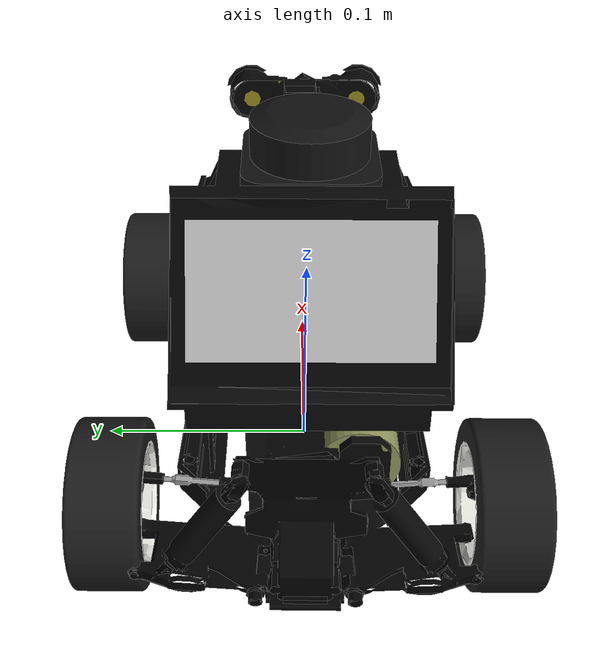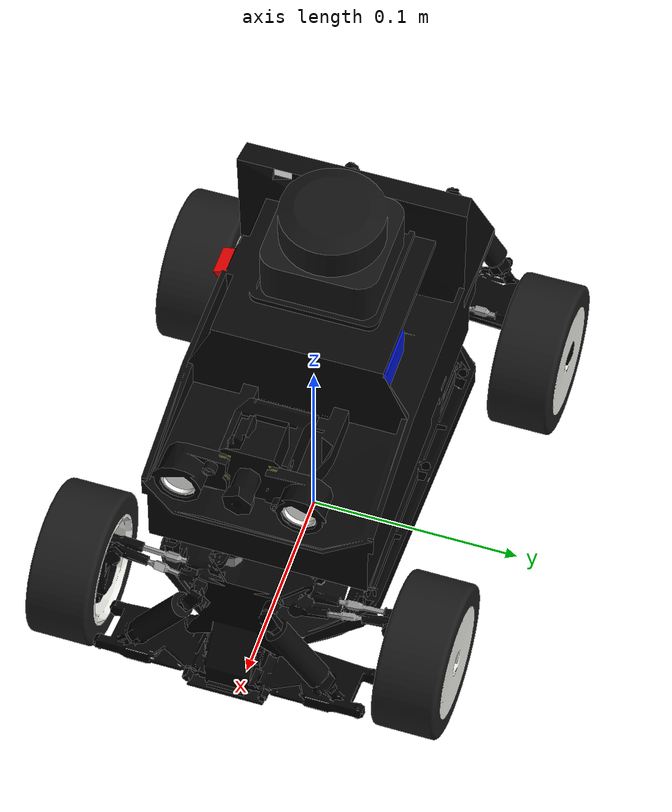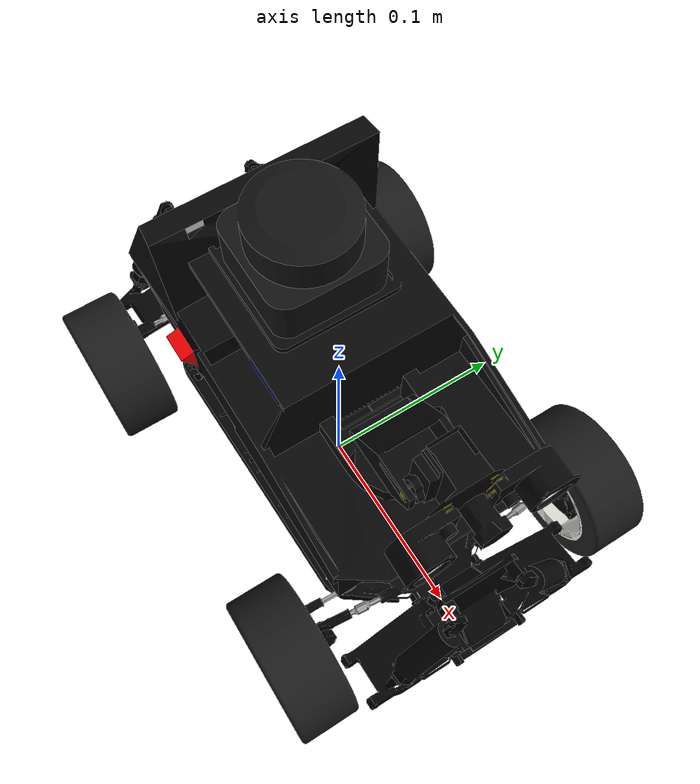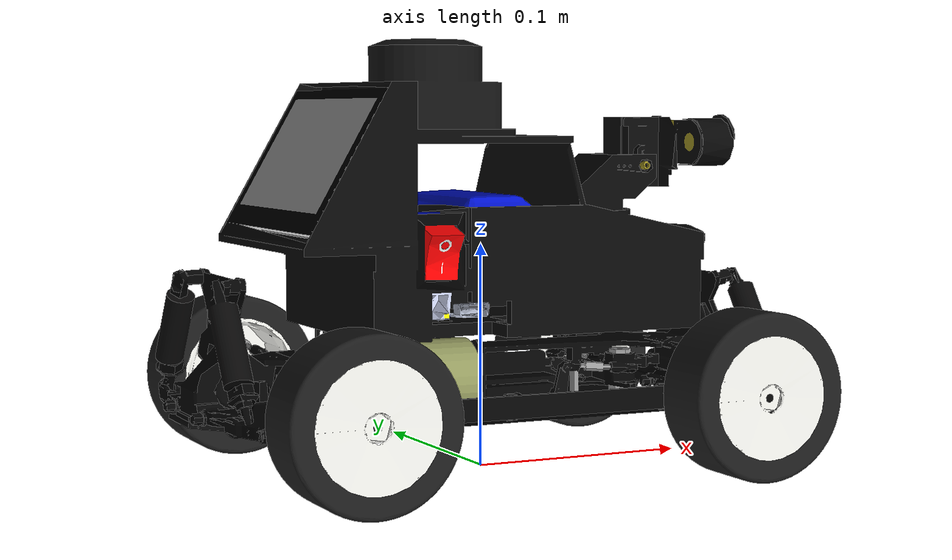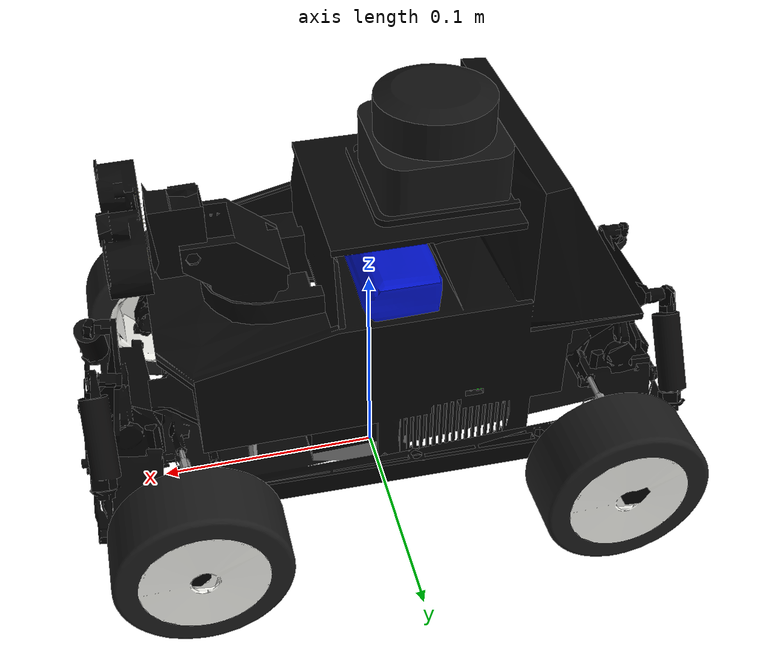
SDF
<sdf version='1.11'>
  <model name='physicar'>
    <link name='base_footprint'>
      <inertial>
        <pose>-0.00087096774193548391 0 0.024741935483870958 0 0 0</pose>
        <mass>3.1000000000000001</mass>
        <inertia>
          <ixx>0.0080554435483870968</ixx>
          <ixy>0</ixy>
          <ixz>0.00042459677419354842</ixz>
          <iyy>0.027925991935483872</iyy>
          <iyz>0</iyz>
          <izz>0.025370548387096771</izz>
        </inertia>
      </inertial>
      <collision name='base_footprint_fixed_joint_lump__base_collision_collision'>
        <pose>0 0 0.079500000000000002 0 0 0</pose>
        <geometry>
          <box>
            <size>0.27000000000000002 0.089999999999999997 0.12</size>
          </box>
        </geometry>
      </collision>
      <collision name='base_footprint_fixed_joint_lump__lidar_collision_collision_1'>
        <pose>-0.027 0 0.18200000000000001 0 0 0</pose>
        <geometry>
          <cylinder>
            <length>0.040000000000000001</length>
            <radius>0.035000000000000003</radius>
          </cylinder>
        </geometry>
      </collision>
      <visual name='base_footprint_fixed_joint_lump__base_visual_visual'>
        <pose>0 0 0.041499999999999998 0 0 0</pose>
        <geometry>
          <mesh>
            <scale>1 1 1</scale>
            <uri>model://meshes/physicar/Base.dae</uri>
          </mesh>
        </geometry>
      </visual>
      <visual name='base_footprint_fixed_joint_lump__top_visual_visual_1'>
        <pose>0 0 0.019499999999999998 0 0 0</pose>
        <geometry>
          <mesh>
            <scale>1 1 1</scale>
            <uri>model://meshes/physicar/Body.dae</uri>
          </mesh>
        </geometry>
      </visual>
      <visual name='base_footprint_fixed_joint_lump__lidar_visual_visual_2'>
        <pose>0 0 0.019499999999999998 0 0 0</pose>
        <geometry>
          <mesh>
            <scale>1 1 1</scale>
            <uri>model://meshes/physicar/RPLidarC1.dae</uri>
          </mesh>
        </geometry>
      </visual>
      <sensor name='imu_sensor' type='imu'>
        <always_on>true</always_on>
        <update_rate>50</update_rate>
        <visualize>false</visualize>
        <topic>imu</topic>
        <imu>
          <angular_velocity>
            <x>
              <noise type='gaussian'>
                <mean>0</mean>
                <stddev>0.00020000000000000001</stddev>
              </noise>
            </x>
            <y>
              <noise type='gaussian'>
                <mean>0</mean>
                <stddev>0.00020000000000000001</stddev>
              </noise>
            </y>
            <z>
              <noise type='gaussian'>
                <mean>0</mean>
                <stddev>0.00020000000000000001</stddev>
              </noise>
            </z>
          </angular_velocity>
          <linear_acceleration>
            <x>
              <noise type='gaussian'>
                <mean>0</mean>
                <stddev>0.017000000000000001</stddev>
              </noise>
            </x>
            <y>
              <noise type='gaussian'>
                <mean>0</mean>
                <stddev>0.017000000000000001</stddev>
              </noise>
            </y>
            <z>
              <noise type='gaussian'>
                <mean>0</mean>
                <stddev>0.017000000000000001</stddev>
              </noise>
            </z>
          </linear_acceleration>
        </imu>
        <pose>0 0 0.0275 0 0 0</pose>
        <gz_frame_id>imu_link</gz_frame_id>
      </sensor>
      <sensor name='mag_sensor' type='magnetometer'>
        <always_on>true</always_on>
        <update_rate>50</update_rate>
        <visualize>false</visualize>
        <topic>mag</topic>
        <magnetometer>
          <x>
            <noise type='gaussian'>
              <mean>0</mean>
              <stddev>0.1</stddev>
            </noise>
          </x>
          <y>
            <noise type='gaussian'>
              <mean>0</mean>
              <stddev>0.1</stddev>
            </noise>
          </y>
          <z>
            <noise type='gaussian'>
              <mean>0</mean>
              <stddev>0.1</stddev>
            </noise>
          </z>
        </magnetometer>
        <pose>0 0 0.0275 0 0 0</pose>
        <gz_frame_id>imu_link</gz_frame_id>
      </sensor>
      <sensor name='lidar_sensor' type='gpu_lidar'>
        <always_on>true</always_on>
        <update_rate>10</update_rate>
        <visualize>false</visualize>
        <topic>scan</topic>
        <lidar>
          <scan>
            <horizontal>
              <samples>720</samples>
              <resolution>1</resolution>
              <min_angle>-3.1415899999999999</min_angle>
              <max_angle>3.1415899999999999</max_angle>
            </horizontal>
          </scan>
          <range>
            <min>0.10000000000000001</min>
            <max>16</max>
            <resolution>0.01</resolution>
          </range>
          <noise>
            <type>gaussian</type>
            <mean>0</mean>
            <stddev>0.01</stddev>
          </noise>
        </lidar>
        <pose>-0.027 0 0.18200000000000001 0 0 0</pose>
        <gz_frame_id>lidar_link</gz_frame_id>
      </sensor>
    </link>
    <joint name='camera_pan_joint' type='revolute'>
      <pose relative_to='base_footprint'>0.050000000000000003 0 0.11950000000000001 0 0 0</pose>
      <parent>base_footprint</parent>
      <child>camera_pan_link</child>
      <axis>
        <xyz>0 0 1</xyz>
        <limit>
          <lower>-0.5236</lower>
          <upper>0.5236</upper>
          <effort>100</effort>
          <velocity>10</velocity>
        </limit>
        <dynamics>
          <damping>0.1</damping>
          <friction>0.01</friction>
          <spring_reference>0</spring_reference>
          <spring_stiffness>0</spring_stiffness>
        </dynamics>
      </axis>
    </joint>
    <link name='camera_pan_link'>
      <pose relative_to='camera_pan_joint'>0 0 0 0 0 0</pose>
      <inertial>
        <pose>0 0 0 0 0 0</pose>
        <mass>0.02</mass>
        <inertia>
          <ixx>1.0e-04</ixx>
          <ixy>0</ixy>
          <ixz>0</ixz>
          <iyy>1.0e-04</iyy>
          <iyz>0</iyz>
          <izz>1.0e-04</izz>
        </inertia>
      </inertial>

      <visual name='camera_pan_link_fixed_joint_lump__pan_visual_visual'>
        <pose>-0.050000000000000003 0 -0.10000000000000001 0 0 0</pose>
        <geometry>
          <mesh>
            <scale>1 1 1</scale>
            <uri>model://meshes/physicar/ServoPan.dae</uri>
          </mesh>
        </geometry>
      </visual>
    </link>
    <joint name='camera_tilt_joint' type='revolute'>
      <pose relative_to='camera_pan_link'>0.025000000000000001 0 0.012999999999999999 0 0 0</pose>
      <parent>camera_pan_link</parent>
      <child>camera_tilt_link</child>
      <axis>
        <xyz>0 -1 0</xyz>
        <limit>
          <lower>-0.5236</lower>
          <upper>0.5236</upper>
          <effort>100</effort>
          <velocity>10</velocity>
        </limit>
        <dynamics>
          <damping>0.1</damping>
          <friction>0.01</friction>
          <spring_reference>0</spring_reference>
          <spring_stiffness>0</spring_stiffness>
        </dynamics>
      </axis>
    </joint>
    <link name='camera_tilt_link'>
      <pose relative_to='camera_tilt_joint'>0 0 0 0 0 0</pose>
      <inertial>
        <pose>0.0094999999999999998 0 0.0035000000000000009 0 0 0</pose>
        <mass>0.02</mass>
        <inertia>
          <ixx>1.0e-04</ixx>
          <ixy>0</ixy>
          <ixz>0</ixz>
          <iyy>1.0e-04</iyy>
          <iyz>0</iyz>
          <izz>1.0e-04</izz>
        </inertia>
      </inertial>

      <visual name='camera_tilt_link_fixed_joint_lump__tilt_visual_visual'>
        <pose>-0.074999999999999997 0 -0.113 0 0 0</pose>
        <geometry>
          <mesh>
            <scale>1 1 1</scale>
            <uri>model://meshes/physicar/ServoTilt.dae</uri>
          </mesh>
        </geometry>
      </visual>
      <sensor name='camera_sensor' type='camera'>
        <always_on>true</always_on>
        <update_rate>15</update_rate>
        <visualize>false</visualize>
        <topic>camera/image_raw</topic>
        <camera>
          <horizontal_fov>1.7453</horizontal_fov>
          <image>
            <width>480</width>
            <height>360</height>
            <format>R8G8B8</format>
          </image>
          <clip>
            <near>0.01</near>
            <far>50</far>
          </clip>
          <distortion>
            <k1>-0.045</k1>
            <k2>-0.0001</k2>
            <k3>0.001</k3>
            <p1>-0.0003</p1>
            <p2>-0.0001</p2>
            <center>0.5 0.5</center>
          </distortion>
          <noise>
            <type>gaussian</type>
            <mean>0</mean>
            <stddev>0.0070000000000000001</stddev>
          </noise>
        </camera>
        <pose>0.030 0 0.014 0 0 0</pose>
        <gz_frame_id>camera_optical_frame</gz_frame_id>
      </sensor>
    </link>
    <joint name='front_left_steering_joint' type='revolute'>
      <pose relative_to='base_footprint'>0.090000000000000000 0.080000000000000000 0.0375 0 0 0</pose>
      <parent>base_footprint</parent>
      <child>front_left_steering_link</child>
      <axis>
        <xyz>0 0 1</xyz>
        <limit>
          <lower>-0.4189</lower>
          <upper>0.4189</upper>
          <effort>25</effort>
          <velocity>10</velocity>
        </limit>
        <dynamics>
          <damping>0.0001</damping>
          <friction>0.0001</friction>
          <spring_reference>0</spring_reference>
          <spring_stiffness>0</spring_stiffness>
        </dynamics>
      </axis>
    </joint>
    <link name='front_left_steering_link'>
      <pose relative_to='front_left_steering_joint'>0 0 0 0 0 0</pose>
      <inertial>
        <pose>0 0 0 0 0 0</pose>
        <mass>0.01</mass>
        <inertia>
          <ixx>9.9999999999999995e-07</ixx>
          <ixy>0</ixy>
          <ixz>0</ixz>
          <iyy>9.9999999999999995e-07</iyy>
          <iyz>0</iyz>
          <izz>9.9999999999999995e-07</izz>
        </inertia>
      </inertial>
    </link>
    <joint name='front_left_wheel_joint' type='revolute'>
      <pose relative_to='front_left_steering_link'>0 0 0 0 0 0</pose>
      <parent>front_left_steering_link</parent>
      <child>front_left_wheel_link</child>
      <axis>
        <xyz>0 1 0</xyz>
        <limit>
          <lower>-inf</lower>
          <upper>inf</upper>
        </limit>
        <dynamics>
          <damping>0.5</damping>
          <friction>0.10000000000000001</friction>
          <spring_reference>0</spring_reference>
          <spring_stiffness>0</spring_stiffness>
        </dynamics>
      </axis>
    </joint>
    <link name='front_left_wheel_link'>
      <pose relative_to='front_left_wheel_joint'>0 0 0 0 0 0</pose>
      <inertial>
        <pose>0 0 0 0 0 0</pose>
        <mass>0.050000000000000003</mass>
        <inertia>
          <ixx>2.1757291666666671e-05</ixx>
          <ixy>0</ixy>
          <ixz>0</ixz>
          <iyy>3.330625e-05</iyy>
          <iyz>0</iyz>
          <izz>2.1757291666666671e-05</izz>
        </inertia>
      </inertial>
      <collision name='front_left_wheel_link_collision'>
        <pose>0 0 0 1.5707963267948959 0 0</pose>
        <geometry>
          <cylinder>
            <length>0.035000000000000003</length>
            <radius>0.0375</radius>
          </cylinder>
        </geometry>
        <surface>
          <contact>
            <ode>
              <kp>1000000</kp>
              <kd>100</kd>
              <min_depth>0.001</min_depth>
            </ode>
          </contact>
          <friction>
            <ode>
              <mu>1</mu>
              <mu2>1</mu2>
            </ode>
          </friction>
        </surface>
      </collision>
      <visual name='front_left_wheel_link_visual'>
        <pose>0 0.017500000000000002 0 0 0 3.1415926535897931</pose>
        <geometry>
          <mesh>
            <scale>1 1 1</scale>
            <uri>model://meshes/physicar/Wheel.dae</uri>
          </mesh>
        </geometry>
      </visual>
    </link>
    <joint name='front_right_steering_joint' type='revolute'>
      <pose relative_to='base_footprint'>0.090000000000000000 -0.080000000000000000 0.0375 0 0 0</pose>
      <parent>base_footprint</parent>
      <child>front_right_steering_link</child>
      <axis>
        <xyz>0 0 1</xyz>
        <limit>
          <lower>-0.4189</lower>
          <upper>0.4189</upper>
          <effort>25</effort>
          <velocity>10</velocity>
        </limit>
        <dynamics>
          <damping>0.0001</damping>
          <friction>0.0001</friction>
          <spring_reference>0</spring_reference>
          <spring_stiffness>0</spring_stiffness>
        </dynamics>
      </axis>
    </joint>
    <link name='front_right_steering_link'>
      <pose relative_to='front_right_steering_joint'>0 0 0 0 0 0</pose>
      <inertial>
        <pose>0 0 0 0 0 0</pose>
        <mass>0.01</mass>
        <inertia>
          <ixx>9.9999999999999995e-07</ixx>
          <ixy>0</ixy>
          <ixz>0</ixz>
          <iyy>9.9999999999999995e-07</iyy>
          <iyz>0</iyz>
          <izz>9.9999999999999995e-07</izz>
        </inertia>
      </inertial>
    </link>
    <joint name='front_right_wheel_joint' type='revolute'>
      <pose relative_to='front_right_steering_link'>0 0 0 0 0 0</pose>
      <parent>front_right_steering_link</parent>
      <child>front_right_wheel_link</child>
      <axis>
        <xyz>0 1 0</xyz>
        <limit>
          <lower>-inf</lower>
          <upper>inf</upper>
        </limit>
        <dynamics>
          <damping>0.5</damping>
          <friction>0.10000000000000001</friction>
          <spring_reference>0</spring_reference>
          <spring_stiffness>0</spring_stiffness>
        </dynamics>
      </axis>
    </joint>
    <link name='front_right_wheel_link'>
      <pose relative_to='front_right_wheel_joint'>0 0 0 0 0 0</pose>
      <inertial>
        <pose>0 0 0 0 0 0</pose>
        <mass>0.050000000000000003</mass>
        <inertia>
          <ixx>2.1757291666666671e-05</ixx>
          <ixy>0</ixy>
          <ixz>0</ixz>
          <iyy>3.330625e-05</iyy>
          <iyz>0</iyz>
          <izz>2.1757291666666671e-05</izz>
        </inertia>
      </inertial>
      <collision name='front_right_wheel_link_collision'>
        <pose>0 0 0 1.5707963267948959 0 0</pose>
        <geometry>
          <cylinder>
            <length>0.035000000000000003</length>
            <radius>0.0375</radius>
          </cylinder>
        </geometry>
        <surface>
          <contact>
            <ode>
              <kp>1000000</kp>
              <kd>100</kd>
              <min_depth>0.001</min_depth>
            </ode>
          </contact>
          <friction>
            <ode>
              <mu>1</mu>
              <mu2>1</mu2>
            </ode>
          </friction>
        </surface>
      </collision>
      <visual name='front_right_wheel_link_visual'>
        <pose>0 -0.017500000000000002 0 0 0 0</pose>
        <geometry>
          <mesh>
            <scale>1 1 1</scale>
            <uri>model://meshes/physicar/Wheel.dae</uri>
          </mesh>
        </geometry>
      </visual>
    </link>
    <joint name='rear_left_wheel_joint' type='revolute'>
      <pose relative_to='base_footprint'>-0.090000000000000000 0.080000000000000000 0.0375 0 0 0</pose>
      <parent>base_footprint</parent>
      <child>rear_left_wheel_link</child>
      <axis>
        <xyz>0 1 0</xyz>
        <limit>
          <lower>-inf</lower>
          <upper>inf</upper>
        </limit>
        <dynamics>
          <damping>0.5</damping>
          <friction>0.10000000000000001</friction>
          <spring_reference>0</spring_reference>
          <spring_stiffness>0</spring_stiffness>
        </dynamics>
      </axis>
    </joint>
    <link name='rear_left_wheel_link'>
      <pose relative_to='rear_left_wheel_joint'>0 0 0 0 0 0</pose>
      <inertial>
        <pose>0 0 0 0 0 0</pose>
        <mass>0.050000000000000003</mass>
        <inertia>
          <ixx>2.1757291666666671e-05</ixx>
          <ixy>0</ixy>
          <ixz>0</ixz>
          <iyy>3.330625e-05</iyy>
          <iyz>0</iyz>
          <izz>2.1757291666666671e-05</izz>
        </inertia>
      </inertial>
      <collision name='rear_left_wheel_link_collision'>
        <pose>0 0 0 1.5707963267948959 0 0</pose>
        <geometry>
          <cylinder>
            <length>0.035000000000000003</length>
            <radius>0.0375</radius>
          </cylinder>
        </geometry>
        <surface>
          <contact>
            <ode>
              <kp>1000000</kp>
              <kd>100</kd>
              <min_depth>0.001</min_depth>
            </ode>
          </contact>
          <friction>
            <ode>
              <mu>1</mu>
              <mu2>1</mu2>
            </ode>
          </friction>
        </surface>
      </collision>
      <visual name='rear_left_wheel_link_visual'>
        <pose>0 0.017500000000000002 0 0 0 3.1415926535897931</pose>
        <geometry>
          <mesh>
            <scale>1 1 1</scale>
            <uri>model://meshes/physicar/Wheel.dae</uri>
          </mesh>
        </geometry>
      </visual>
    </link>
    <joint name='rear_right_wheel_joint' type='revolute'>
      <pose relative_to='base_footprint'>-0.090000000000000000 -0.080000000000000000 0.0375 0 0 0</pose>
      <parent>base_footprint</parent>
      <child>rear_right_wheel_link</child>
      <axis>
        <xyz>0 1 0</xyz>
        <limit>
          <lower>-inf</lower>          <upper>inf</upper>
        </limit>
        <dynamics>
          <damping>0.5</damping>
          <friction>0.10000000000000001</friction>
          <spring_reference>0</spring_reference>
          <spring_stiffness>0</spring_stiffness>
        </dynamics>
      </axis>
    </joint>
    <link name='rear_right_wheel_link'>
      <pose relative_to='rear_right_wheel_joint'>0 0 0 0 0 0</pose>
      <inertial>
        <pose>0 0 0 0 0 0</pose>
        <mass>0.050000000000000003</mass>
        <inertia>
          <ixx>2.1757291666666671e-05</ixx>
          <ixy>0</ixy>
          <ixz>0</ixz>
          <iyy>3.330625e-05</iyy>
          <iyz>0</iyz>
          <izz>2.1757291666666671e-05</izz>
        </inertia>
      </inertial>
      <collision name='rear_right_wheel_link_collision'>
        <pose>0 0 0 1.5707963267948959 0 0</pose>
        <geometry>
          <cylinder>
            <length>0.035000000000000003</length>
            <radius>0.0375</radius>
          </cylinder>
        </geometry>
        <surface>
          <contact>
            <ode>
              <kp>1000000</kp>
              <kd>100</kd>
              <min_depth>0.001</min_depth>
            </ode>
          </contact>
          <friction>
            <ode>
              <mu>1</mu>
              <mu2>1</mu2>
            </ode>
          </friction>
        </surface>
      </collision>
      <visual name='rear_right_wheel_link_visual'>
        <pose>0 -0.017500000000000002 0 0 0 0</pose>
        <geometry>
          <mesh>
            <scale>1 1 1</scale>
            <uri>model://meshes/physicar/Wheel.dae</uri>
          </mesh>
        </geometry>
      </visual>
    </link>
    <plugin name='gz::sim::systems::AckermannSteering' filename='gz-sim-ackermann-steering-system'>
      <left_joint>front_left_wheel_joint</left_joint>
      <left_joint>rear_left_wheel_joint</left_joint>
      <right_joint>front_right_wheel_joint</right_joint>
      <right_joint>rear_right_wheel_joint</right_joint>
      <left_steering_joint>front_left_steering_joint</left_steering_joint>
      <right_steering_joint>front_right_steering_joint</right_steering_joint>
      <kingpin_width>0.16</kingpin_width>
      <steering_limit>0.4189</steering_limit>
      <wheel_base>0.18</wheel_base>
      <wheel_separation>0.16</wheel_separation>
      <wheel_radius>0.0375</wheel_radius>
      <min_velocity>-3.0</min_velocity>
      <max_velocity>3.0</max_velocity>
      <min_acceleration>-10</min_acceleration>
      <max_acceleration>10</max_acceleration>
      <steer_p_gain>200</steer_p_gain>
      <topic>cmd_vel</topic>
    </plugin>
    <plugin name='gz::sim::systems::OdometryPublisher' filename='gz-sim-odometry-publisher-system'>
      <odom_frame>odom</odom_frame>
      <robot_base_frame>base_footprint</robot_base_frame>
      <odom_topic>odom</odom_topic>
      <dimensions>3</dimensions>
      <odom_publish_frequency>50</odom_publish_frequency>
    </plugin>
    <plugin name='gz::sim::systems::JointPositionController' filename='gz-sim-joint-position-controller-system'>
      <joint_name>camera_pan_joint</joint_name>
      <topic>/camera/pan</topic>
      <p_gain>15</p_gain>
      <i_gain>0</i_gain>
      <d_gain>0.1</d_gain>
      <cmd_max>15</cmd_max>
      <cmd_min>-15</cmd_min>
    </plugin>
    <plugin name='gz::sim::systems::JointPositionController' filename='gz-sim-joint-position-controller-system'>
      <joint_name>camera_tilt_joint</joint_name>
      <topic>/camera/tilt</topic>
      <p_gain>15</p_gain>
      <i_gain>0</i_gain>
      <d_gain>0.1</d_gain>
      <cmd_max>15</cmd_max>
      <cmd_min>-15</cmd_min>
    </plugin>
    <plugin name='gz::sim::systems::JointStatePublisher' filename='gz-sim-joint-state-publisher-system'>
      <topic>joint_states</topic>
      <joint_name>camera_pan_joint</joint_name>
      <joint_name>camera_tilt_joint</joint_name>
      <joint_name>rear_left_wheel_joint</joint_name>
      <joint_name>rear_right_wheel_joint</joint_name>
      <joint_name>front_left_wheel_joint</joint_name>
      <joint_name>front_right_wheel_joint</joint_name>
      <joint_name>front_left_steering_joint</joint_name>
      <joint_name>front_right_steering_joint</joint_name>
    </plugin>
    <frame name='imu_joint' attached_to='base_link'>
      <pose>0 0 0.0275 0 0 0</pose>
    </frame>
    <frame name='imu_link' attached_to='imu_joint'>
      <pose>0 0 0 0 0 0</pose>
    </frame>
    <frame name='lidar_joint' attached_to='base_link'>
      <pose>-0.027 0 0.14550000000000001 0 0 0</pose>
    </frame>
    <frame name='lidar_link' attached_to='lidar_joint'>
      <pose>0 0 0 0 0 0</pose>
    </frame>
    <frame name='base_joint' attached_to='base_footprint'>
      <pose>0 0 0.0375 0 0 0</pose>
    </frame>
    <frame name='base_link' attached_to='base_joint'>
      <pose>0 0 0 0 0 0</pose>
    </frame>
    <frame name='camera_optical_joint' attached_to='camera_link'>
      <pose>0 0 0 -1.5707963267948959 -5.5511151231257827e-17 -1.5707963267948959</pose>
    </frame>
    <frame name='camera_optical_frame' attached_to='camera_optical_joint'>
      <pose>0 0 0 0 0 0</pose>
    </frame>
    <frame name='camera_joint' attached_to='camera_tilt_link'>
      <pose>0.030 0 0.014 0 0 0</pose>
    </frame>
    <frame name='camera_link' attached_to='camera_joint'>
      <pose>0 0 0 0 0 0</pose>
    </frame>
  </model>
</sdf>
